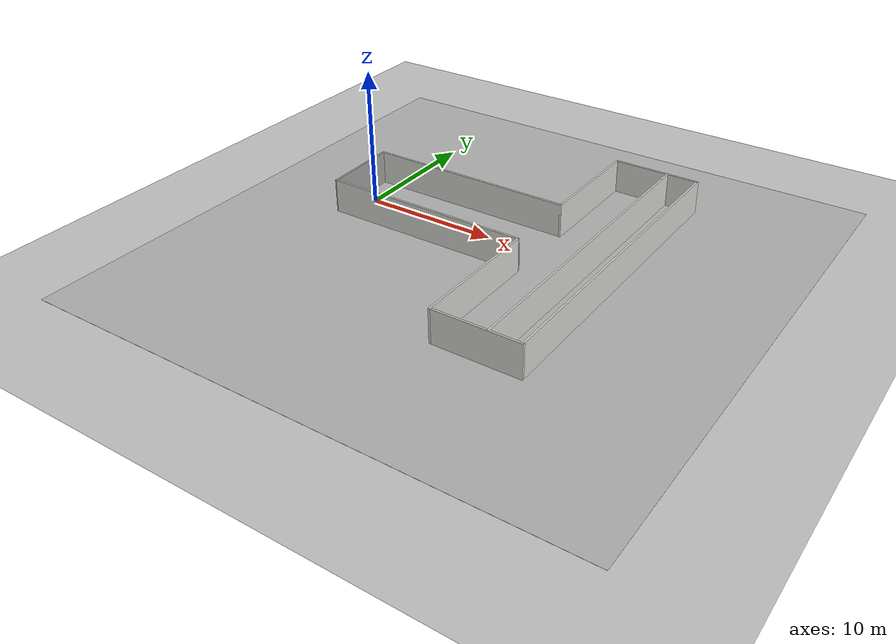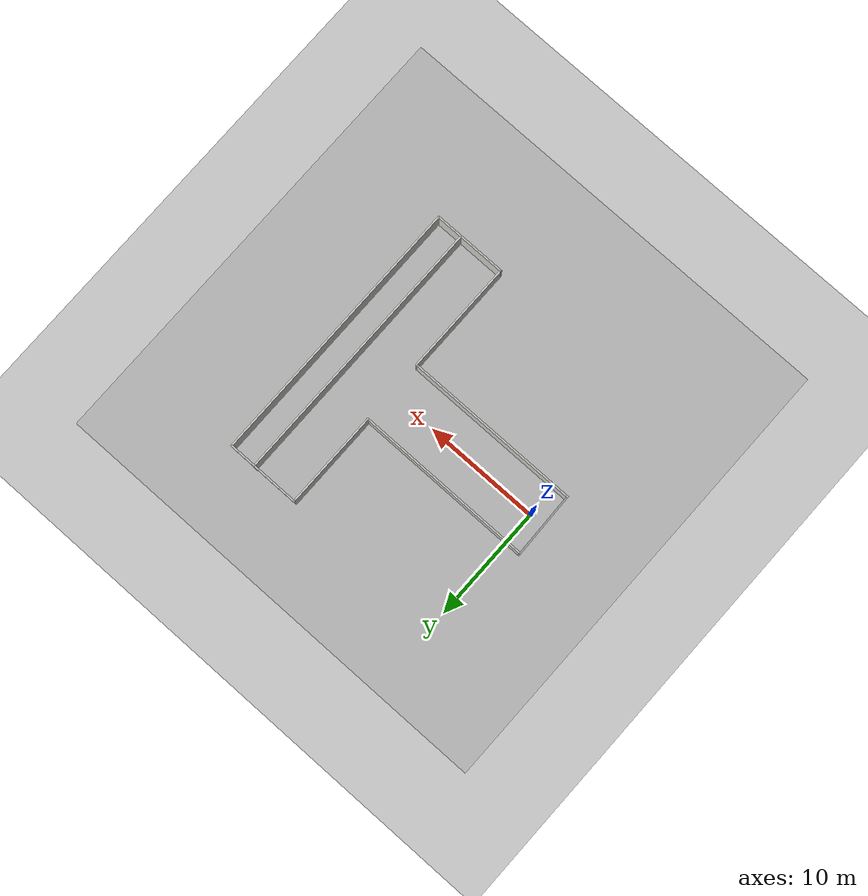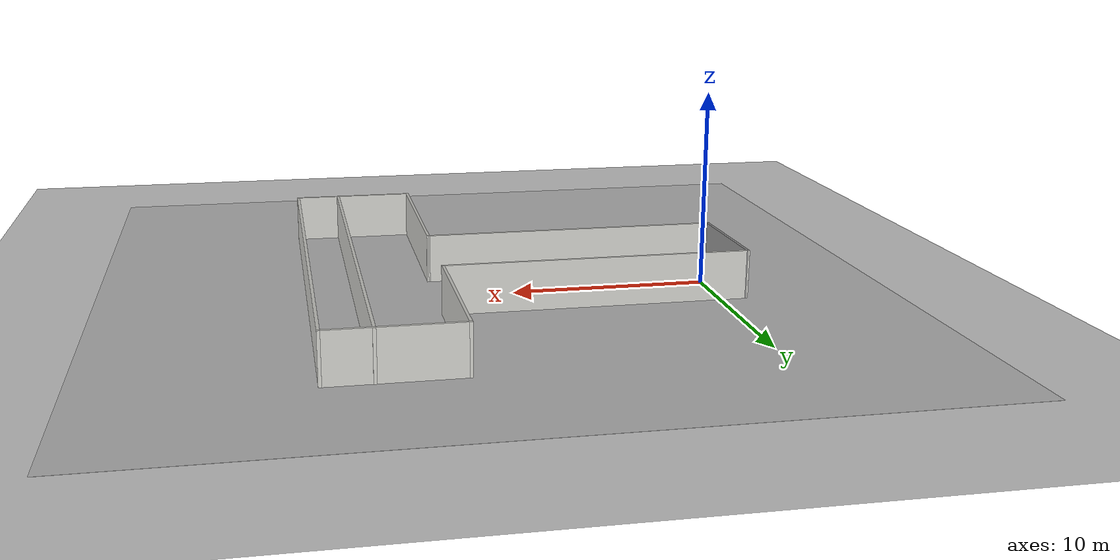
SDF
<sdf version="1.7">
 <world name="lab_world">
  <gravity>0 0 -9.8</gravity>
  <model name="ground_plane">
   <static>1</static>
   <link name="link">
    <collision name="collision">
     <geometry><plane><normal>0 0 1</normal><size>100 100</size></plane></geometry>
     <surface><friction><ode><mu>100</mu><mu2>50</mu2></ode></friction></surface>
    </collision>
    <visual name="visual">
     <cast_shadows>0</cast_shadows>
     <geometry><plane><normal>0 0 1</normal><size>100 100</size></plane></geometry>
     <material>
      <script><uri>file://media/materials/scripts/gazebo.material</uri><name>Gazebo/Grey</name></script>
     </material>
    </visual>
   </link>
  </model>
  <light name="sun" type="directional">
   <pose>0 0 10 0 -0 0</pose>
   <diffuse>0.8 0.8 0.8 1</diffuse>
   <specular>0.2 0.2 0.2 1</specular>
   <attenuation>
    <range>1000</range>
    <constant>0.9</constant>
    <linear>0.01</linear>
    <quadratic>0.001</quadratic>
   </attenuation>
   <direction>-0.5 0.1 -0.9</direction>
   <spot><inner_angle>0</inner_angle><outer_angle>0</outer_angle><falloff>0</falloff></spot>
  </light>
  <magnetic_field>6e-06 2.3e-05 -4.2e-05</magnetic_field>
  <atmosphere type="adiabatic"/>
  <physics type="ode">
   <max_step_size>0.001</max_step_size>
   <real_time_factor>1</real_time_factor>
   <real_time_update_rate>1000</real_time_update_rate>
  </physics>
  <scene><ambient>0.4 0.4 0.4 1</ambient><background>0.7 0.7 0.7 1</background><shadows>1</shadows></scene>
  <spherical_coordinates>
   <surface_model>EARTH_WGS84</surface_model>
   <latitude_deg>0</latitude_deg>
   <longitude_deg>0</longitude_deg>
   <elevation>0</elevation>
   <heading_deg>0</heading_deg>
  </spherical_coordinates>
  <model name="ding_road">
   <pose>9.48907 -0.563583 0 0 -0 0</pose>
   <link name="Wall_1">
    <collision name="Wall_1_Collision">
     <geometry><box><size>5.71582 0.15 2.5</size></box></geometry>
     <pose>0 0 1.25 0 -0 0</pose>
    </collision>
    <visual name="Wall_1_Visual">
     <pose>0 0 1.25 0 -0 0</pose>
     <geometry><box><size>5.71582 0.15 2.5</size></box></geometry>
     <material>
      <script><uri>file://media/materials/scripts/gazebo.material</uri><name>Gazebo/Grey</name></script>
      <ambient>1 1 1 1</ambient>
     </material>
     <meta><layer>0</layer></meta>
    </visual>
    <pose>-10.7787 0.647902 0 0 -0 1.59608</pose>
   </link>
   <link name="Wall_10">
    <collision name="Wall_10_Collision">
     <geometry><box><size>23.75 0.15 2.5</size></box></geometry>
     <pose>0 0 1.25 0 -0 0</pose>
    </collision>
    <visual name="Wall_10_Visual">
     <pose>0 0 1.25 0 -0 0</pose>
     <geometry><box><size>23.75 0.15 2.5</size></box></geometry>
     <material>
      <script><uri>file://media/materials/scripts/gazebo.material</uri><name>Gazebo/CeilingTiled</name></script>
      <ambient>1 1 1 1</ambient>
     </material>
     <meta><layer>0</layer></meta>
    </visual>
    <pose>8.55424 0.019719 0 0 -0 -1.5708</pose>
   </link>
   <link name="Wall_2">
    <collision name="Wall_2_Collision">
     <geometry><box><size>15.5 0.15 2.5</size></box></geometry>
     <pose>0 0 1.25 0 -0 0</pose>
    </collision>
    <visual name="Wall_2_Visual">
     <pose>0 0 1.25 0 -0 0</pose>
     <geometry><box><size>15.5 0.15 2.5</size></box></geometry>
     <material>
      <script><uri>file://media/materials/scripts/gazebo.material</uri><name>Gazebo/CeilingTiled</name></script>
      <ambient>1 1 1 1</ambient>
     </material>
     <meta><layer>0</layer></meta>
    </visual>
    <pose>-3.17407 3.43031 0 0 -0 0</pose>
   </link>
   <link name="Wall_3">
    <collision name="Wall_3_Collision">
     <geometry><box><size>8.5 0.15 2.5</size></box></geometry>
     <pose>0 0 1.25 0 -0 0</pose>
    </collision>
    <visual name="Wall_3_Visual">
     <pose>0 0 1.25 0 -0 0</pose>
     <geometry><box><size>8.5 0.15 2.5</size></box></geometry>
     <material>
      <script><uri>file://media/materials/scripts/gazebo.material</uri><name>Gazebo/CeilingTiled</name></script>
      <ambient>1 1 1 1</ambient>
     </material>
     <meta><layer>0</layer></meta>
    </visual>
    <pose>4.50093 7.60531 0 0 -0 1.5708</pose>
   </link>
   <link name="Wall_4">
    <collision name="Wall_4_Collision">
     <geometry><box><size>6.5 0.15 2.5</size></box></geometry>
     <pose>0 0 1.25 0 -0 0</pose>
    </collision>
    <visual name="Wall_4_Visual">
     <pose>0 0 1.25 0 -0 0</pose>
     <geometry><box><size>6.5 0.15 2.5</size></box></geometry>
     <material>
      <script><uri>file://media/materials/scripts/gazebo.material</uri><name>Gazebo/CeilingTiled</name></script>
      <ambient>1 1 1 1</ambient>
     </material>
     <meta><layer>0</layer></meta>
    </visual>
    <pose>7.67593 11.7803 0 0 -0 0</pose>
   </link>
   <link name="Wall_5">
    <collision name="Wall_5_Collision">
     <geometry><box><size>23.75 0.15 2.5</size></box></geometry>
     <pose>0 0 1.25 0 -0 0</pose>
    </collision>
    <visual name="Wall_5_Visual">
     <pose>0 0 1.25 0 -0 0</pose>
     <geometry><box><size>23.75 0.15 2.5</size></box></geometry>
     <material>
      <script><uri>file://media/materials/scripts/gazebo.material</uri><name>Gazebo/CeilingTiled</name></script>
      <ambient>1 1 1 1</ambient>
     </material>
     <meta><layer>0</layer></meta>
    </visual>
    <pose>10.8509 -0.019687 0 0 -0 -1.5708</pose>
   </link>
   <link name="Wall_6">
    <collision name="Wall_6_Collision">
     <geometry><box><size>6.5 0.15 2.5</size></box></geometry>
     <pose>0 0 1.25 0 -0 0</pose>
    </collision>
    <visual name="Wall_6_Visual">
     <pose>0 0 1.25 0 -0 0</pose>
     <geometry><box><size>6.5 0.15 2.5</size></box></geometry>
     <material>
      <script><uri>file://media/materials/scripts/gazebo.material</uri><name>Gazebo/CeilingTiled</name></script>
      <ambient>1 1 1 1</ambient>
     </material>
     <meta><layer>0</layer></meta>
    </visual>
    <pose>7.67593 -11.8197 0 0 -0 3.14159</pose>
   </link>
   <link name="Wall_7">
    <collision name="Wall_7_Collision">
     <geometry><box><size>9.8556 0.15 2.5</size></box></geometry>
     <pose>0 0 1.25 0 -0 0</pose>
    </collision>
    <visual name="Wall_7_Visual">
     <pose>0 0 1.25 0 -0 0</pose>
     <geometry><box><size>9.8556 0.15 2.5</size></box></geometry>
     <material>
      <script><uri>file://media/materials/scripts/gazebo.material</uri><name>Gazebo/CeilingTiled</name></script>
      <ambient>1 1 1 1</ambient>
     </material>
     <meta><layer>0</layer></meta>
    </visual>
    <pose>4.50093 -6.96692 0 0 -0 1.5708</pose>
   </link>
   <link name="Wall_8">
    <collision name="Wall_8_Collision">
     <geometry><box><size>15.3593 0.15 2.5</size></box></geometry>
     <pose>0 0 1.25 0 -0 0</pose>
    </collision>
    <visual name="Wall_8_Visual">
     <pose>0 0 1.25 0 -0 0</pose>
     <geometry><box><size>15.3593 0.15 2.5</size></box></geometry>
     <material>
      <script><uri>file://media/materials/scripts/gazebo.material</uri><name>Gazebo/CeilingTiled</name></script>
      <ambient>1 1 1 1</ambient>
     </material>
     <meta><layer>0</layer></meta>
    </visual>
    <pose>-3.10371 -2.12433 0 0 -0 -3.14025</pose>
   </link>
   <static>1</static>
  </model>
  <model name="Floor">
   <link name="main">
    <pose>0 0 0.01 0 -0 0</pose>
    <collision name="main_Collision"><geometry><box><size>40 40 0.01</size></box></geometry></collision>
    <visual name="main_Visual">
     <geometry><box><size>40 40 0.01</size></box></geometry>
     <material>
      <script>
       <uri>model://Floor/materials/scripts</uri>
       <uri>model://Floor/materials/textures</uri>
       <name>floor</name>
      </script>
     </material>
    </visual>
   </link>
   <static>1</static>
   <pose>10.8396 -2.11604 0 0 -0 0</pose>
  </model>
 </world>
</sdf>
